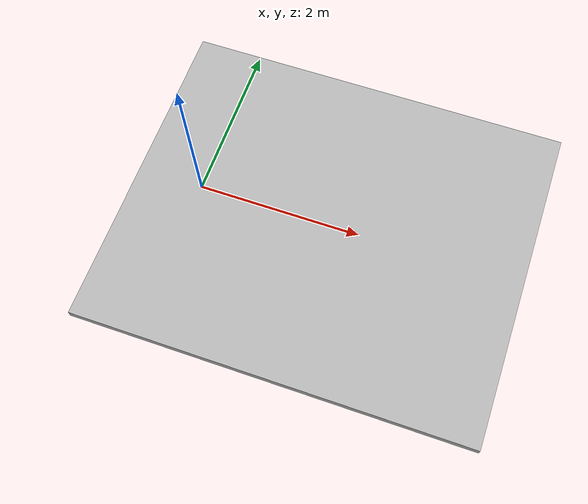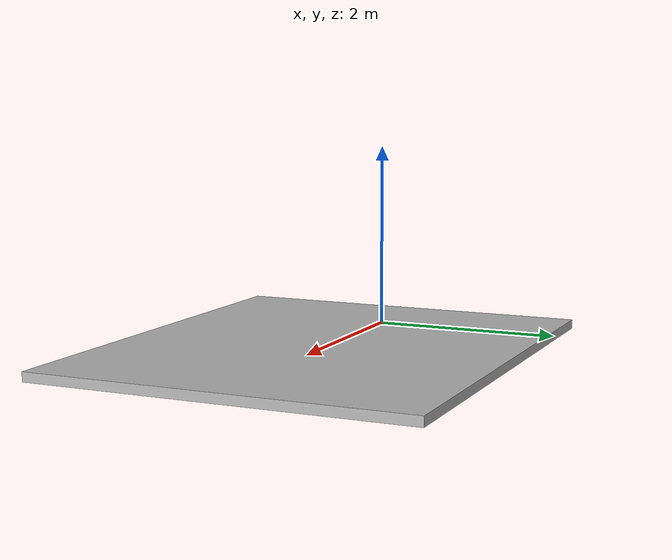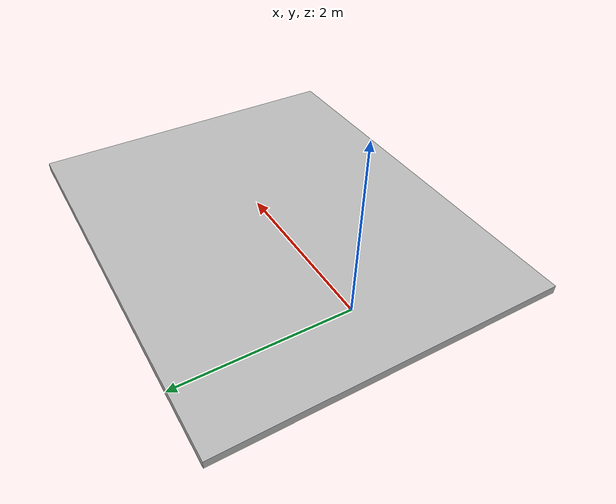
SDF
<?xml version="1.0" ?>
<sdf version="1.5">
  <model name="three_ground">
    <static>true</static>
    <link name="link">
      <collision name="collision">
        <geometry>
          <box>
            <size>4 4.8 .1</size>
          </box>
        </geometry>
      </collision>
      <visual name="visual">
        <pose>1.6 0 0 0 0 1.5708</pose>
        <cast_shadows>false</cast_shadows>
        <geometry>
          <box>
            <size>4 4.8 .1</size>
          </box>
        </geometry>
        <material>
          <script>
            <uri>model://three_ground/materials/scripts</uri>
            <uri>model://three_ground/materials/textures</uri>
            <name>my/first_ground</name>
          </script>
          <!-- 设置纹理不重复 -->
          <texture>
            <repeat>1 1</repeat> <!-- 将纹理重复设置为1x1，即不重复 -->
          </texture>
        </material>
      </visual>
    </link>
  </model>
</sdf>
